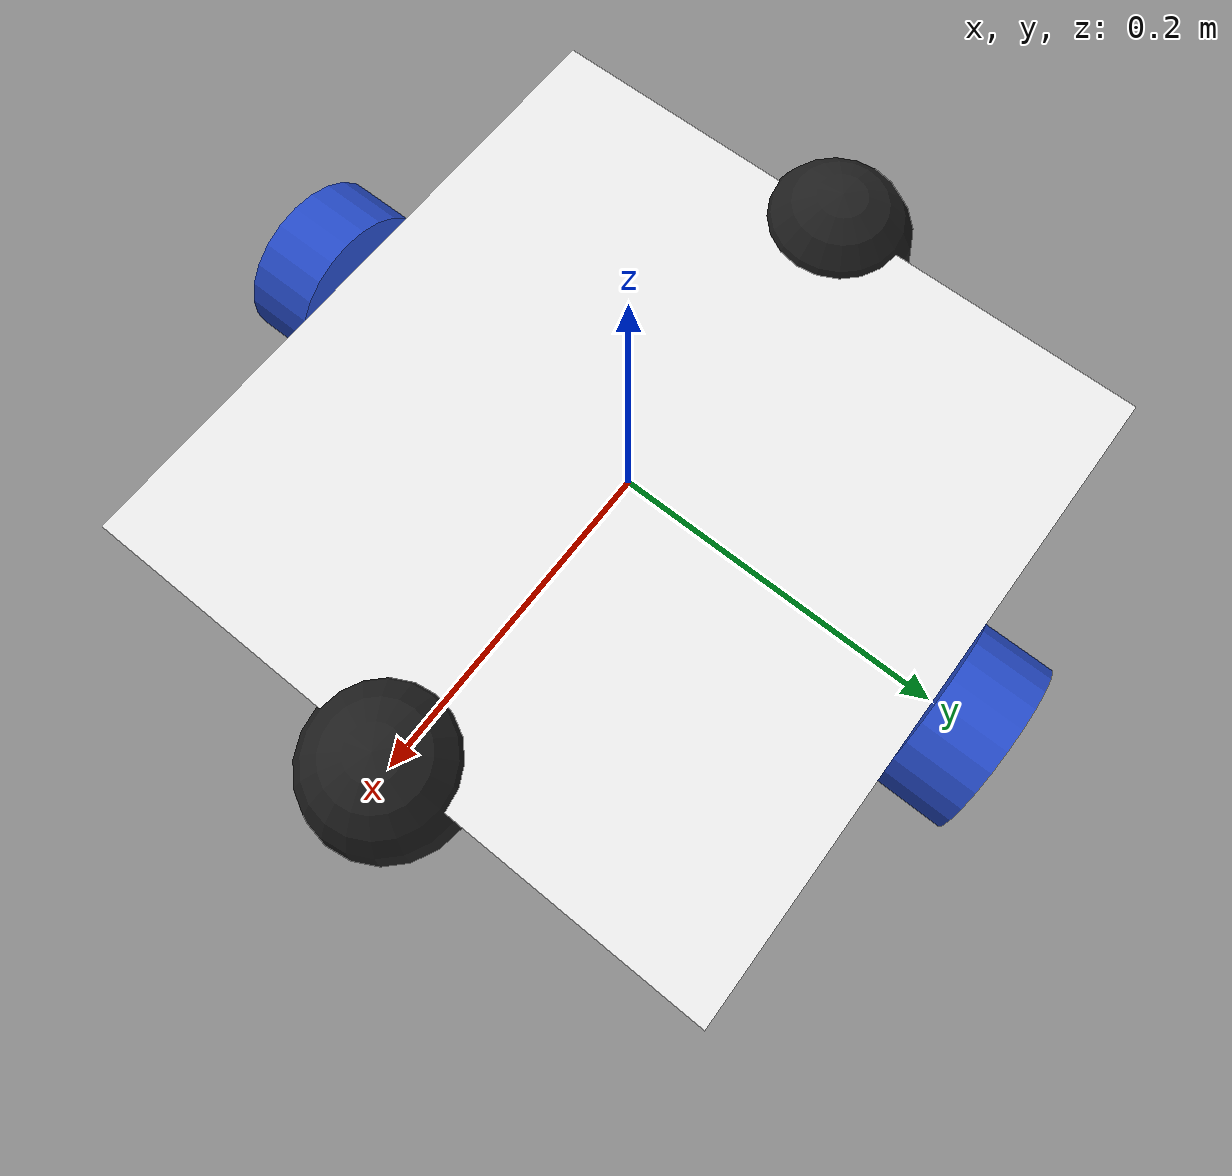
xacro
<?xml version="1.0"?>
<robot xmlns:xacro="http://www.ros.org/wiki/xacro">

    <!-- Example link -->
    <xacro:include filename="$(find charlie_description)/macros/inertial_macros.xacro"/>

    <xacro:property name="rad_w" value="0.05"/>
    <xacro:property name="le_w" value="0.04"/>
    <xacro:property name="ly" value="0.4"/>
    <xacro:property name="lx" value="0.4"/>
    <xacro:property name="lz" value="0.05"/>

    <!-- Camera dimensions -->
    <xacro:property name="cam_base_x" value="${0.015}"/>
    <xacro:property name="cam_base_y" value="${0.015}"/>
    <xacro:property name="cam_base_z" value="${0.015}"/>

    <xacro:property name="cam_x" value="${0.025}"/>
    <xacro:property name="cam_y" value="${0.05}"/>
    <xacro:property name="cam_z" value="${0.025}"/>

    <!-- IMU dimensions -->
    <xacro:property name="imu_lx" value="0.05"/>
    <xacro:property name="imu_ly" value="0.05"/>
    <xacro:property name="imu_lz" value="0.01"/>

    <!-- Example link -->
    <link name="base_link">
    </link>

    <joint name="base_link_joint" type="fixed">
        <parent link="base_link"/>
        <child link="chassis"/>
        <origin xyz="0 0 0"/>
    </joint>

    <!-- chassis link -->
    <link name="chassis">
        <visual>
            <origin xyz="0 0 0"/>
            <geometry>
                <box size="${lx} ${ly} ${lz}"/>
            </geometry>
            <material name="white"/>
        </visual>
        <collision>
            <origin xyz="0 0 0"/>
            <geometry>
               <box size="${lx} ${ly} ${lz}"/>
            </geometry>
        </collision>
        <xacro:inertial_box mass="5.0" x="${lx}" y="${ly}" z="${lz}">
            <origin xyz="0 0 0" rpy="0 0 0"/>
        </xacro:inertial_box>
    </link>

    <!-- left wheel joint -->
    <joint name="left_wheel_joint" type="continuous">
        <parent link="chassis"/>
        <child link="left_wheel"/>
        <origin xyz="0 ${ly/2+le_w/2} 0.0" rpy="-${pi/2} 0 0"/>
        <axis xyz="0 0 1"/>
        <dynamics damping="0.2" friction="0.0"/>
    </joint>

    <!-- left wheel link -->
    <link name="left_wheel">
        <visual>
            <geometry>
                <cylinder radius="${rad_w}" length="${le_w}"/>
            </geometry>
            <material name="blue"/>
        </visual>
        <collision>
            <geometry>
                  <sphere radius="${rad_w}" />
            </geometry>

        </collision>
        <xacro:inertial_cylinder mass="0.1" length="${le_w}" radius="${rad_w}">
            <origin xyz="0 0 0" rpy="0 0 0"/>
        </xacro:inertial_cylinder>
    </link>

    <gazebo reference="left_wheel">
        <mu1 value="2.0"/>
        <mu2 value="2.0"/>
        <kp value="10000000.0" />
        <kd value="1.0" />
    </gazebo>

    <!-- right wheel joint -->
    <joint name="right_wheel_joint" type="continuous">
        <parent link="chassis"/>
        <child link="right_wheel"/>
        <origin xyz="0 -${ly/2+le_w/2} 0.0" rpy="${pi/2} 0 0"/>
        <axis xyz="0 0 -1"/>
        <dynamics damping="0.2" friction="0.0"/>
    </joint>

    <!-- right wheel link -->
    <link name="right_wheel">
        <visual>
            <geometry>
                <cylinder radius="${rad_w}" length="${le_w}"/>
            </geometry>
            <material name="blue"/>
        </visual>
        <collision>
            <geometry>
                  <sphere radius="${rad_w}" />
            </geometry>

        </collision>
        <xacro:inertial_cylinder mass="0.1" length="${le_w}" radius="${rad_w}">
            <origin xyz="0 0 0" rpy="0 0 0"/>
        </xacro:inertial_cylinder>
    </link>

    <gazebo reference="right_wheel">
        <mu1 value="2.0"/>
        <mu2 value="2.0"/>
        <kp value="10000000.0" />
        <kd value="1.0" />
    </gazebo>

    <!-- caster wheel joint -->
    <joint name="caster_front_wheel_joint" type="fixed">
        <parent link="chassis"/>
        <child link="caster_front_wheel"/>
        <origin xyz="${lx/2} 0 0.0"/>
    </joint>

    <!-- left wheel link -->
    <link name="caster_front_wheel">
        <visual>
            <geometry>
                <sphere radius="0.049"/>
            </geometry>
            <material name="black"/>
        </visual>
        <collision>
            <geometry>
                <sphere radius="0.049"/>
            </geometry>
            <surface>
                <friction>
                <ode>
                    <mu>0.01</mu>
                    <mu2>0.01</mu2>
                </ode>
                </friction>
            </surface>
        </collision>
        <xacro:inertial_sphere mass="0.1" radius="0.049">
            <origin xyz="0 0 0" rpy="0 0 0"/>
        </xacro:inertial_sphere>
    </link>

     <!-- caster wheel joint -->
    <joint name="caster_rear_wheel_joint" type="fixed">
        <parent link="chassis"/>
        <child link="caster_rear_wheel"/>
        <origin xyz="${-lx/2} 0 0.0"/>
    </joint>

    <!-- left wheel link -->
    <link name="caster_rear_wheel">
        <visual>
            <geometry>
                <sphere radius="0.049"/>
            </geometry>
            <material name="black"/>
        </visual>
        <collision>
            <geometry>
                <sphere radius="0.049"/>
            </geometry>
            <surface>
                <friction>
                <ode>
                    <mu>0.01</mu>
                    <mu2>0.01</mu2>
                </ode>
                </friction>
            </surface>
        </collision>
        <xacro:inertial_sphere mass="0.1" radius="0.049">
            <origin xyz="0 0 0" rpy="0 0 0"/>
        </xacro:inertial_sphere>
    </link>

</robot>

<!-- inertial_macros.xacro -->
<robot xmlns:xacro="http://www.ros.org/wiki/xacro" >

    <!-- Specify some standard inertial calculations https://en.wikipedia.org/wiki/List_of_moments_of_inertia -->
    <!-- These make use of xacro's mathematical functionality -->

    <xacro:macro name="inertial_sphere" params="mass radius *origin">
        <inertial>
            <xacro:insert_block name="origin"/>
            <mass value="${mass}" />
            <inertia ixx="${(2/5) * mass * (radius*radius)}" ixy="0.0" ixz="0.0"
                    iyy="${(2/5) * mass * (radius*radius)}" iyz="0.0"
                    izz="${(2/5) * mass * (radius*radius)}" />
        </inertial>
    </xacro:macro>

    <xacro:macro name="inertial_box" params="mass x y z *origin">
        <inertial>
            <xacro:insert_block name="origin"/>
            <mass value="${mass}" />
            <inertia ixx="${(1/12) * mass * (y*y+z*z)}" ixy="0.0" ixz="0.0"
                    iyy="${(1/12) * mass * (x*x+z*z)}" iyz="0.0"
                    izz="${(1/12) * mass * (x*x+y*y)}" />
        </inertial>
    </xacro:macro>

    <xacro:macro name="inertial_cylinder" params="mass length radius *origin">
        <inertial>
            <xacro:insert_block name="origin"/>
            <mass value="${mass}" />
            <inertia ixx="${(1/12) * mass * (3*radius*radius + length*length)}" ixy="0.0" ixz="0.0"
                    iyy="${(1/12) * mass * (3*radius*radius + length*length)}" iyz="0.0"
                    izz="${(1/2) * mass * (radius*radius)}" />
        </inertial>
    </xacro:macro>
</robot>
